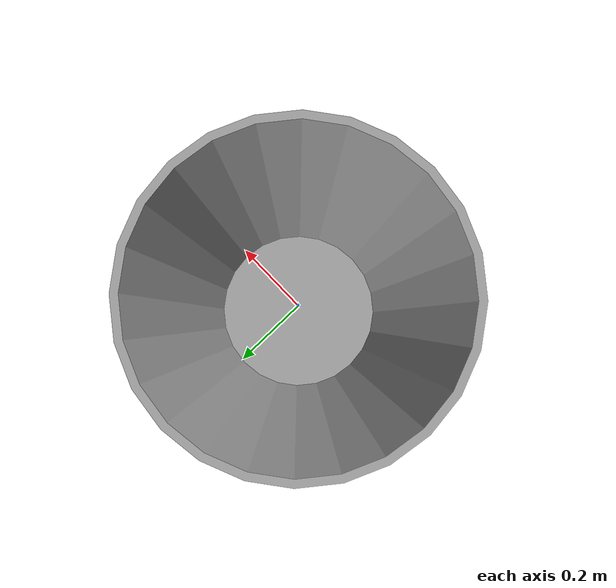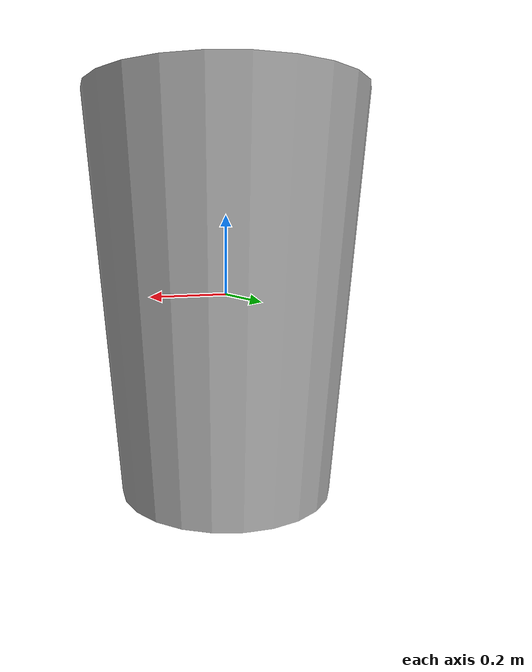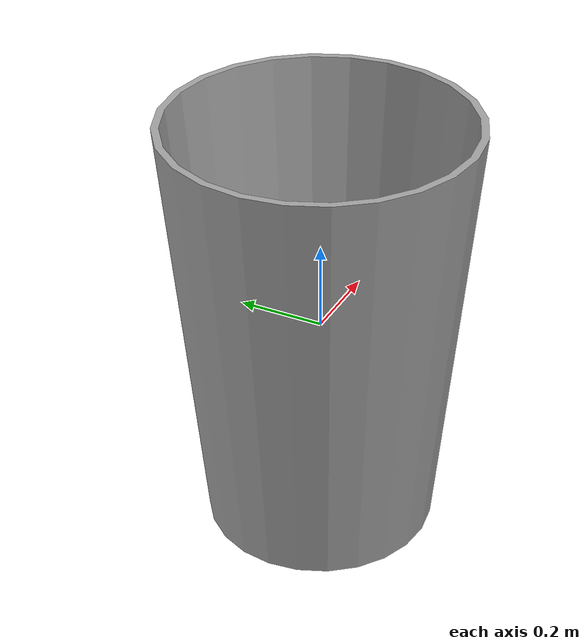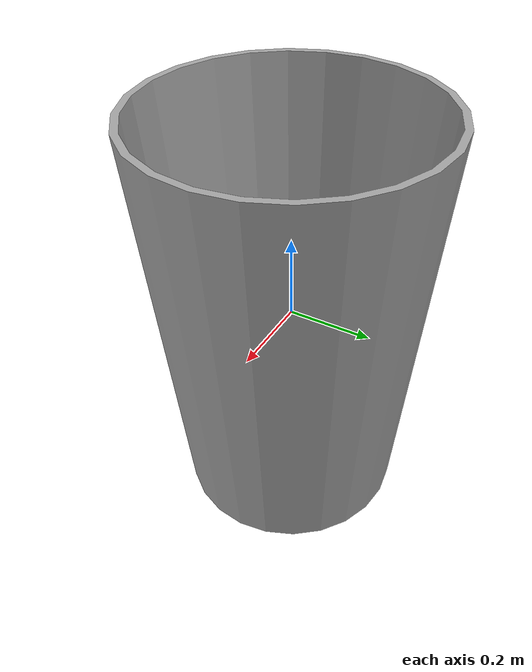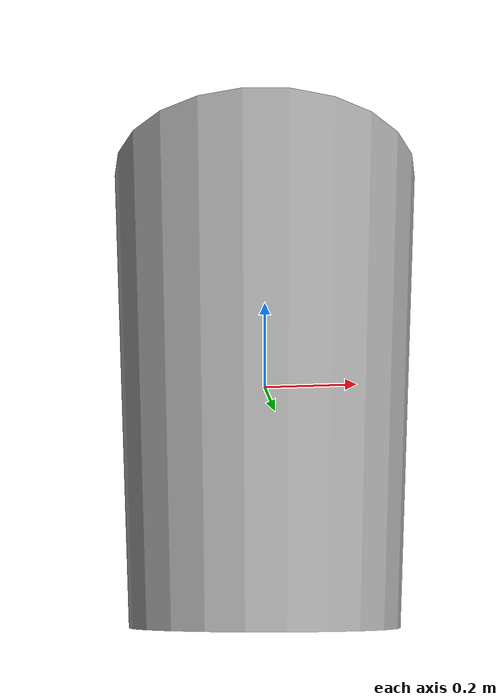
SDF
<?xml version="1.0" ?>
<sdf version="1.5">
  <model name='cup3'>
    <pose>0 0 0 0 0 0</pose>
    <static>1</static>
    <link name='body'>
      <collision name="cup3-coll">
        <pose>0 0 -0.5 0 0 0</pose>
        <geometry>
          <mesh>
            <uri>model://cup3/meshes/cup3.dae</uri>
          </mesh>
        </geometry>
      </collision>
      <visual name='cup3'>
        <cast_shadows>1</cast_shadows>
        <pose>0 0 -0.5 0 0 0</pose>
        <geometry>
          <mesh>
            <uri>model://cup3/meshes/cup3.dae</uri>
          </mesh>
        </geometry>
      </visual>
      <velocity_decay>
        <linear>0</linear>
        <angular>0</angular>
      </velocity_decay>
      <self_collide>0</self_collide>
      <kinematic>0</kinematic>
      <gravity>1</gravity>
    </link>
  </model>

</sdf>
